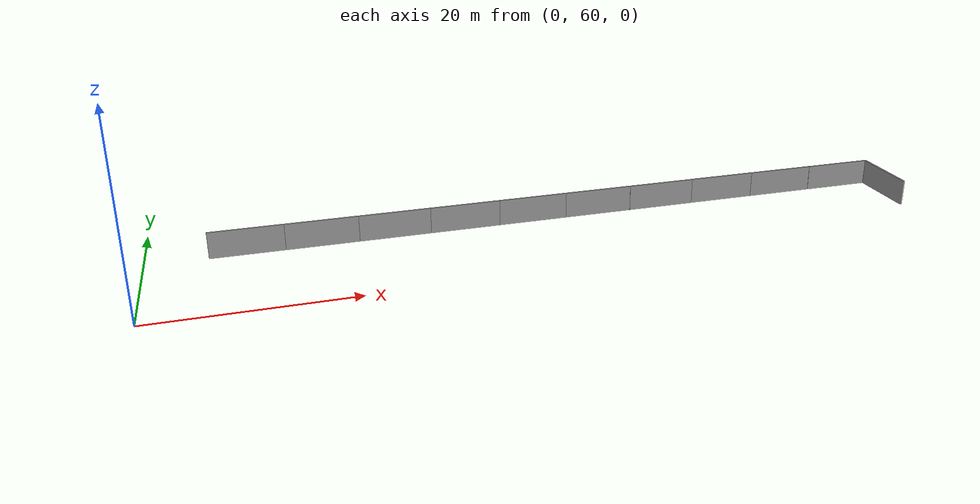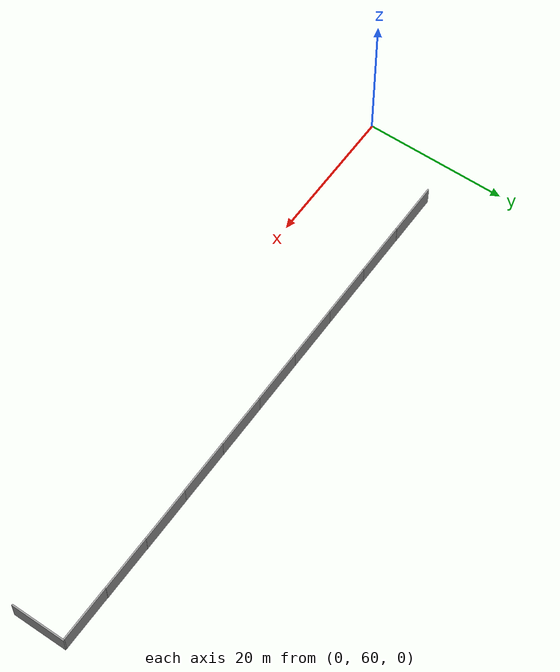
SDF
<sdf version="1.7">
 <world name="default">
  <model name="grey_wall_clone_10_clone_0_clone_18">
   <static>1</static>
   <link name="link">
    <pose>0 0 1.4 0 -0 0</pose>
    <collision name="collision"><geometry><box><size>7.5 0.2 2.8</size></box></geometry></collision>
    <visual name="visual">
     <cast_shadows>0</cast_shadows>
     <geometry><box><size>7.5 0.2 2.8</size></box></geometry>
     <material>
      <script>
       <uri>model://forest/grey_wall/materials/scripts</uri>
       <uri>model://forest/grey_wall/materials/textures</uri>
       <name>vrc/grey_wall</name>
      </script>
     </material>
    </visual>
   </link>
   <pose>81.2148 68.9647 0 0 0 -1.56932</pose>
  </model>
  <model name="grey_wall_clone_10_clone_clone_0">
   <static>1</static>
   <link name="link">
    <pose>0 0 1.4 0 -0 0</pose>
    <collision name="collision"><geometry><box><size>7.5 0.2 2.8</size></box></geometry></collision>
    <visual name="visual">
     <cast_shadows>0</cast_shadows>
     <geometry><box><size>7.5 0.2 2.8</size></box></geometry>
     <material>
      <script>
       <uri>model://forest/grey_wall/materials/scripts</uri>
       <uri>model://forest/grey_wall/materials/textures</uri>
       <name>vrc/grey_wall</name>
      </script>
     </material>
    </visual>
   </link>
   <pose>77.3508 72.6116 0 0 -0 0</pose>
  </model>
  <model name="grey_wall_clone_10_clone_clone_1">
   <static>1</static>
   <link name="link">
    <pose>0 0 1.4 0 -0 0</pose>
    <collision name="collision"><geometry><box><size>7.5 0.2 2.8</size></box></geometry></collision>
    <visual name="visual">
     <cast_shadows>0</cast_shadows>
     <geometry><box><size>7.5 0.2 2.8</size></box></geometry>
     <material>
      <script>
       <uri>model://forest/grey_wall/materials/scripts</uri>
       <uri>model://forest/grey_wall/materials/textures</uri>
       <name>vrc/grey_wall</name>
      </script>
     </material>
    </visual>
   </link>
   <pose>69.8438 72.6289 0 0 -0 0</pose>
  </model>
  <model name="grey_wall_clone_10_clone_clone_2">
   <static>1</static>
   <link name="link">
    <pose>0 0 1.4 0 -0 0</pose>
    <collision name="collision"><geometry><box><size>7.5 0.2 2.8</size></box></geometry></collision>
    <visual name="visual">
     <cast_shadows>0</cast_shadows>
     <geometry><box><size>7.5 0.2 2.8</size></box></geometry>
     <material>
      <script>
       <uri>model://forest/grey_wall/materials/scripts</uri>
       <uri>model://forest/grey_wall/materials/textures</uri>
       <name>vrc/grey_wall</name>
      </script>
     </material>
    </visual>
   </link>
   <pose>62.3519 72.6417 0 0 -0 0</pose>
  </model>
  <model name="grey_wall_clone_10_clone_clone_3">
   <static>1</static>
   <link name="link">
    <pose>0 0 1.4 0 -0 0</pose>
    <collision name="collision"><geometry><box><size>7.5 0.2 2.8</size></box></geometry></collision>
    <visual name="visual">
     <cast_shadows>0</cast_shadows>
     <geometry><box><size>7.5 0.2 2.8</size></box></geometry>
     <material>
      <script>
       <uri>model://forest/grey_wall/materials/scripts</uri>
       <uri>model://forest/grey_wall/materials/textures</uri>
       <name>vrc/grey_wall</name>
      </script>
     </material>
    </visual>
   </link>
   <pose>54.875 72.6299 0 0 -0 0</pose>
  </model>
  <model name="grey_wall_clone_10_clone_clone_4">
   <static>1</static>
   <link name="link">
    <pose>0 0 1.4 0 -0 0</pose>
    <collision name="collision"><geometry><box><size>7.5 0.2 2.8</size></box></geometry></collision>
    <visual name="visual">
     <cast_shadows>0</cast_shadows>
     <geometry><box><size>7.5 0.2 2.8</size></box></geometry>
     <material>
      <script>
       <uri>model://forest/grey_wall/materials/scripts</uri>
       <uri>model://forest/grey_wall/materials/textures</uri>
       <name>vrc/grey_wall</name>
      </script>
     </material>
    </visual>
   </link>
   <pose>47.3663 72.6324 0 0 -0 0</pose>
  </model>
  <model name="grey_wall_clone_10_clone_clone_5">
   <static>1</static>
   <link name="link">
    <pose>0 0 1.4 0 -0 0</pose>
    <collision name="collision"><geometry><box><size>7.5 0.2 2.8</size></box></geometry></collision>
    <visual name="visual">
     <cast_shadows>0</cast_shadows>
     <geometry><box><size>7.5 0.2 2.8</size></box></geometry>
     <material>
      <script>
       <uri>model://forest/grey_wall/materials/scripts</uri>
       <uri>model://forest/grey_wall/materials/textures</uri>
       <name>vrc/grey_wall</name>
      </script>
     </material>
    </visual>
   </link>
   <pose>39.8774 72.6251 0 0 -0 0</pose>
  </model>
  <model name="grey_wall_clone_10_clone_clone_6">
   <static>1</static>
   <link name="link">
    <pose>0 0 1.4 0 -0 0</pose>
    <collision name="collision"><geometry><box><size>7.5 0.2 2.8</size></box></geometry></collision>
    <visual name="visual">
     <cast_shadows>0</cast_shadows>
     <geometry><box><size>7.5 0.2 2.8</size></box></geometry>
     <material>
      <script>
       <uri>model://forest/grey_wall/materials/scripts</uri>
       <uri>model://forest/grey_wall/materials/textures</uri>
       <name>vrc/grey_wall</name>
      </script>
     </material>
    </visual>
   </link>
   <pose>32.3692 72.6193 0 0 -0 0</pose>
  </model>
  <model name="grey_wall_clone_10_clone_clone_7">
   <static>1</static>
   <link name="link">
    <pose>0 0 1.4 0 -0 0</pose>
    <collision name="collision"><geometry><box><size>7.5 0.2 2.8</size></box></geometry></collision>
    <visual name="visual">
     <cast_shadows>0</cast_shadows>
     <geometry><box><size>7.5 0.2 2.8</size></box></geometry>
     <material>
      <script>
       <uri>model://forest/grey_wall/materials/scripts</uri>
       <uri>model://forest/grey_wall/materials/textures</uri>
       <name>vrc/grey_wall</name>
      </script>
     </material>
    </visual>
   </link>
   <pose>24.8712 72.6187 0 0 -0 0</pose>
  </model>
  <model name="grey_wall_clone_10_clone_clone_8">
   <static>1</static>
   <link name="link">
    <pose>0 0 1.4 0 -0 0</pose>
    <collision name="collision"><geometry><box><size>7.5 0.2 2.8</size></box></geometry></collision>
    <visual name="visual">
     <cast_shadows>0</cast_shadows>
     <geometry><box><size>7.5 0.2 2.8</size></box></geometry>
     <material>
      <script>
       <uri>model://forest/grey_wall/materials/scripts</uri>
       <uri>model://forest/grey_wall/materials/textures</uri>
       <name>vrc/grey_wall</name>
      </script>
     </material>
    </visual>
   </link>
   <pose>17.3775 72.6269 0 0 -0 0</pose>
  </model>
  <model name="grey_wall_clone_10_clone_clone_9">
   <static>1</static>
   <link name="link">
    <pose>0 0 1.4 0 -0 0</pose>
    <collision name="collision"><geometry><box><size>7.5 0.2 2.8</size></box></geometry></collision>
    <visual name="visual">
     <cast_shadows>0</cast_shadows>
     <geometry><box><size>7.5 0.2 2.8</size></box></geometry>
     <material>
      <script>
       <uri>model://forest/grey_wall/materials/scripts</uri>
       <uri>model://forest/grey_wall/materials/textures</uri>
       <name>vrc/grey_wall</name>
      </script>
     </material>
    </visual>
   </link>
   <pose>9.8792 72.6386 0 0 -0 0</pose>
  </model>
 </world>
</sdf>
